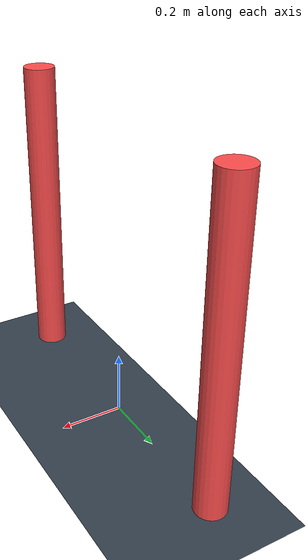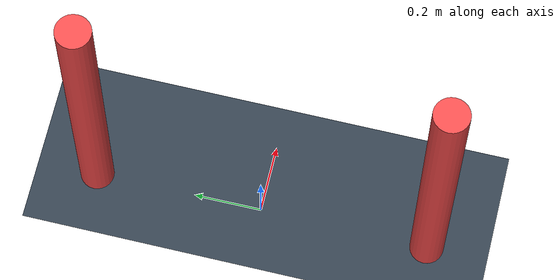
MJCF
<mujoco model="two_poles_solid_colors">
  <!-- Basic simulation settings -->
  <compiler angle="degree" coordinate="local" inertiafromgeom="true" autolimits="true"/>
  <option timestep="0.01" integrator="RK4" gravity="0 0 -9.81"/>

  <!-- Zero friction for every geom -->
  <default>
    <geom friction="0.03 0.03 0.03"/>
  </default>

  <worldbody>
    <!-- Overhead light for visibility -->
    <light name="sun" pos="0 0 5" dir="0 0 -1"
           diffuse="1 1 1" specular="0.1 0.1 0.1"
           directional="true" cutoff="100"/>

    <!-- Ground plane: solid light-blue -->
    <geom name="ground" type="plane" pos="0 0 0"
          size="100 100 0.5"
          rgba="0.2 0.25 0.3 1"/>    <!-- light blue -->

    <!-- Two light-red poles (radius 0.05 m, half-height 0.5 m) -->
    <!-- Left pole centre at (-0.5, 0, 0.5) -->
    <geom name="pole_left"  type="cylinder"
          pos="0.0 -0.5 0.5" size="0.05 0.5"
          rgba="1 0.3 0.3 1"/>

    <!-- Right pole centre at (+0.5, 0, 0.5) -->
    <geom name="pole_right" type="cylinder"
          pos=" 0.0 0.5 0.5" size="0.05 0.5"
          rgba="1 0.3 0.3 1"/>
  </worldbody>
</mujoco>
